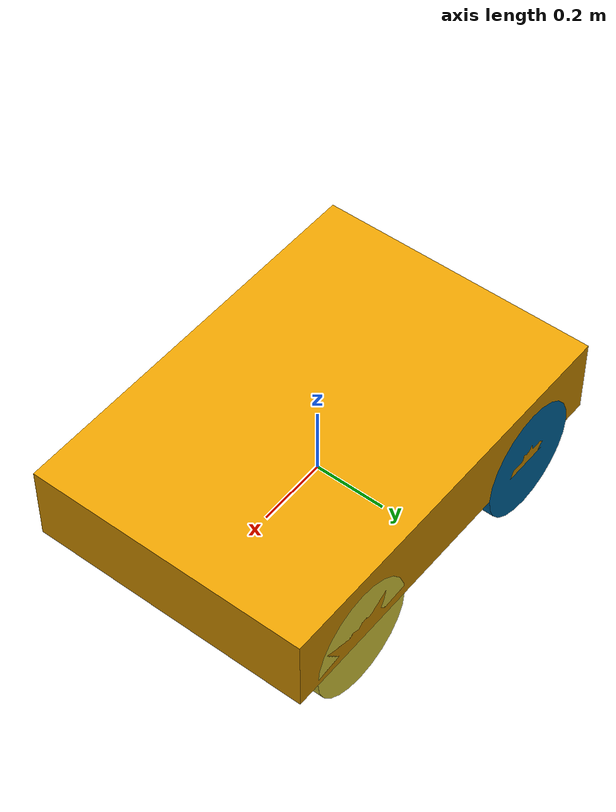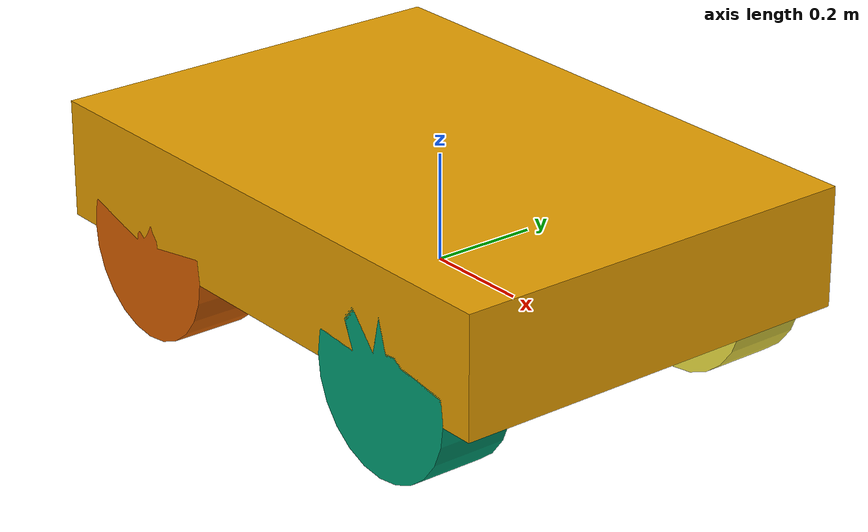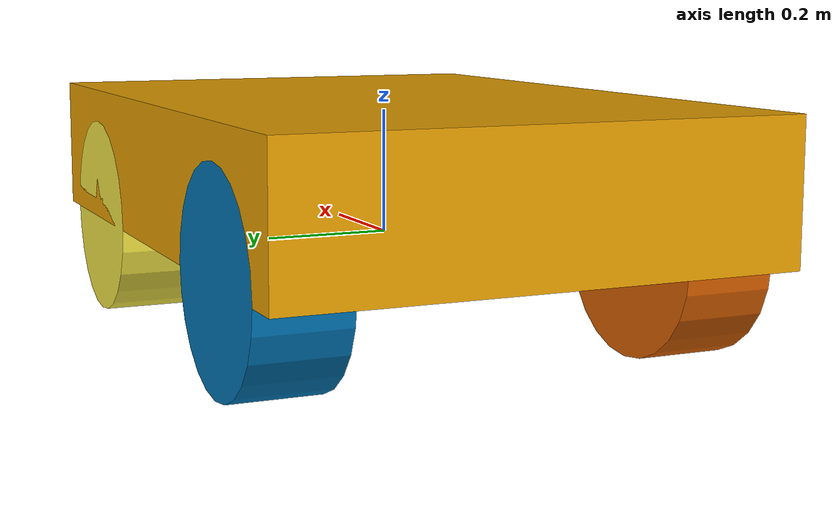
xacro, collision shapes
<?xml version="1.0"?>

<robot name="dr100"  xmlns:xacro="http://ros.org/wiki/xacro">

    <xacro:arg name="robot_namespace" default="/" />

    <!-- Property Encapsulation -->
    <xacro:property name="M_PI" value="3.14159"/>

    <xacro:property name="base_link_x_size" value="1.128" />
    <xacro:property name="base_link_y_size" value="0.78937" />
    <xacro:property name="base_link_z_size" value="0.222" />

    <xacro:property name="wheel_mass" value="3" />
    <xacro:property name="wheel_length" value="0.14113" />
    <xacro:property name="wheel_radius" value="0.16416" />
    <xacro:property name="wheelbase" value="0.672" />
    <xacro:property name="track" value="0.64824" />
    <xacro:property name="wheel_vertical_offset" value="0.00432" />

    <!-- Chassis -->
    <link name="base_link">
        <visual>
            <geometry>
                <mesh filename="package://dr100_description/meshes/base_link.STL" />
            </geometry>
        </visual>
        <collision>
            <origin xyz="0 0 ${base_link_z_size/2}" rpy="0 0 0" />
            <geometry>
                <box size="${base_link_x_size} ${base_link_y_size} ${base_link_z_size}"/>
            </geometry>
        </collision>
    </link>
    <link name="inertial_link">
        <inertial>
            <mass value="40" />
            <origin xyz="0.0 0.0 0.0" />
            <inertia ixx="3.791" ixy="-0.012" ixz="0.007" iyy="7.879" iyz="-141.459" izz="9.703" />
        </inertial>
    </link>
    <joint name="inertial_joint" type="fixed">
        <origin xyz="0 0 0" rpy="0 0 0" />
        <parent link="base_link" />
        <child link="inertial_link" />
    </joint>

    <!-- Wheels -->
    <xacro:include filename="$(find dr100_description)/urdf/dr100_wheel.xacro" />

</robot>

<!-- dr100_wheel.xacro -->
<robot xmlns:xacro="http://ros.org/wiki/xacro" name="dr100_wheel">

    <!-- Wheel Macro -->
    <xacro:macro name="dr100_wheel" params="wheel_prefix *joint_pose">
        <link name="${wheel_prefix}_wheel_link">
            <inertial>
                <mass value="${wheel_mass}" />
                <origin xyz="0 0 0" />
                <inertia ixx="0.019" ixy="0" ixz="0" iyy="0.032" iyz="0" izz="0.019" />
            </inertial>
            <visual>
                <origin xyz="${-wheel_radius} ${-wheel_length/2} ${-wheel_radius}" rpy="0 0 0" />
                <geometry>
                    <mesh filename="package://dr100_description/meshes/wheel.STL" />
                </geometry>
            </visual>
            <collision>
                <origin xyz="0 0 0" rpy="${M_PI/2} 0 0" />
                <geometry>
                    <cylinder length="${wheel_length}" radius="${wheel_radius}" />
                </geometry>
            </collision>
        </link>

        <joint name="${wheel_prefix}_wheel" type="continuous">
            <parent link="base_link"/>
            <child link="${wheel_prefix}_wheel_link"/>
            <xacro:insert_block name="joint_pose"/>
            <axis xyz="0 1 0" rpy="0 0 0" />
        </joint>
    </xacro:macro>

    <!-- Chassis wheels -->
    <xacro:dr100_wheel wheel_prefix="front_right">
        <origin xyz="${wheelbase/2} ${-track/2} ${wheel_vertical_offset}" rpy="0 0 0" />
    </xacro:dr100_wheel>
    <xacro:dr100_wheel wheel_prefix="front_left">
        <origin xyz="${wheelbase/2} ${track/2} ${wheel_vertical_offset}" rpy="0 0 0" />
    </xacro:dr100_wheel>
    <xacro:dr100_wheel wheel_prefix="rear_left">
        <origin xyz="${-wheelbase/2} ${track/2} ${wheel_vertical_offset}" rpy="0 0 0" />
    </xacro:dr100_wheel>
    <xacro:dr100_wheel wheel_prefix="rear_right">
        <origin xyz="${-wheelbase/2} ${-track/2} ${wheel_vertical_offset}" rpy="0 0 0" />
    </xacro:dr100_wheel>

</robot>
